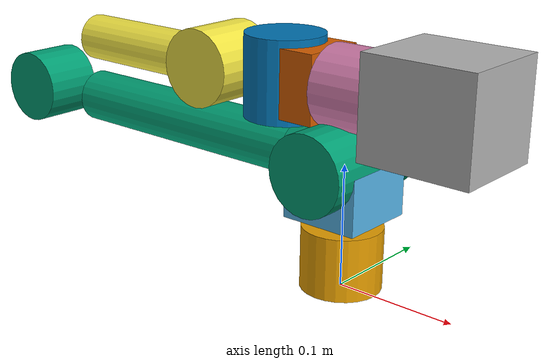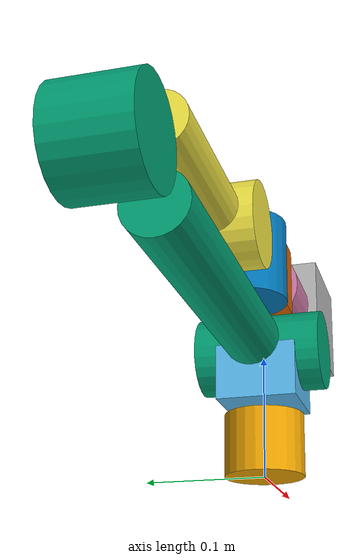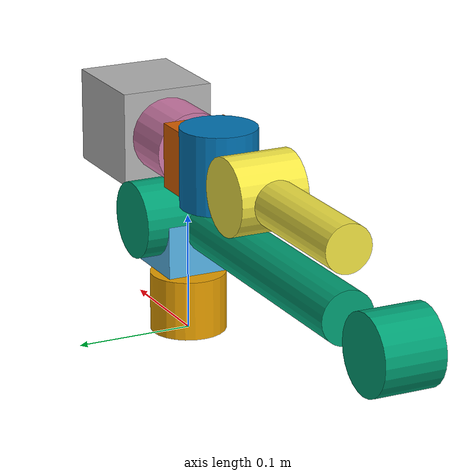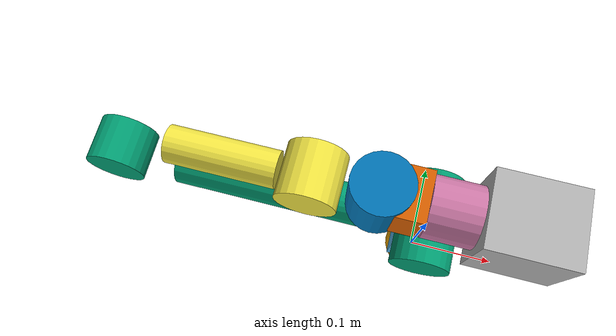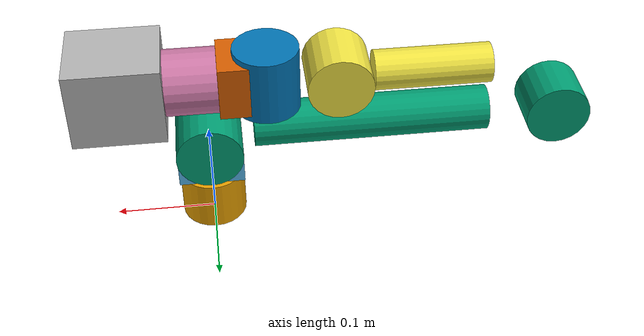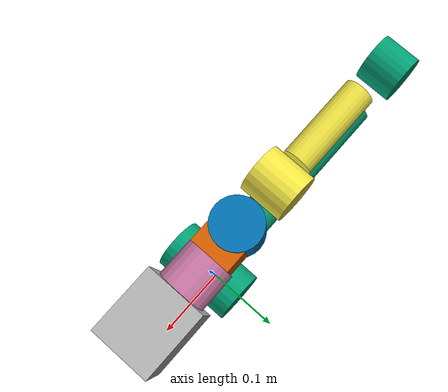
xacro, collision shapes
<robot xmlns:xacro="http://www.ros.org/wiki/xacro" name="z1_description">
  <xacro:arg name="prefix" default=""/>
  <link name="$(arg prefix)link00">
    <visual>
      <origin rpy="0 0 0" xyz="0 0 0" />
      <geometry>
        <mesh filename="package://z1_description/meshes/visual/z1_Link00.dae" scale="1 1 1" />
      </geometry>
    </visual>
    <collision>
      <geometry>
        <cylinder length="0.051" radius="0.0325" />
      </geometry>
      <origin rpy="0 0 0" xyz="0 0 0.0255" />
    </collision>
    <inertial>
      <origin rpy="0 0 0" xyz="-0.00334984 -0.00013615 0.02495843" />
      <mass value="0.47247481" />
      <inertia ixx="0.00037937" ixy="3.5e-07" ixz="1.037e-05" iyy="0.00041521" iyz="9.9e-07" izz="0.00053066" />
    </inertial>
  </link>
  <joint name="$(arg prefix)joint1" type="revolute">
    <origin rpy="0 0 0" xyz="0 0 0.0585" />
    <parent link="$(arg prefix)link00" />
    <child link="$(arg prefix)link01" />
    <axis xyz="0 0 1" />
    <dynamics damping="1.0" friction="1.0" />
    <limit effort="30.0" lower="-2.6179938779914944" upper="2.6179938779914944" velocity="10" />
  </joint>
  <link name="$(arg prefix)link01">
    <visual>
      <origin rpy="0 0 0" xyz="0 0 0" />
      <geometry>
        <mesh filename="package://z1_description/meshes/visual/z1_Link01.dae" scale="1 1 1" />
      </geometry>
    </visual>
    <inertial>
      <origin rpy="0 0 0" xyz="2.47e-06 -0.00025198 0.02317169" />
      <mass value="0.67332551" />
      <inertia ixx="0.00128328" ixy="6e-08" ixz="4e-07" iyy="0.00071931" iyz="-5e-07" izz="0.00083936" />
    </inertial>
    <collision>
      <origin xyz="0 0 0.0225" rpy="0 0 0" />
      <geometry>
        <box size="0.065 0.065 0.045" />
      </geometry>
    </collision>
  </link>
  <joint name="$(arg prefix)joint2" type="revolute">
    <origin rpy="0 0 0" xyz="0 0 0.045" />
    <parent link="$(arg prefix)link01" />
    <child link="$(arg prefix)link02" />
    <axis xyz="0 1 0" />
    <dynamics damping="2.0" friction="2.0" />
    <limit effort="60.0" lower="0.0" upper="2.9670597283903604" velocity="10" />
  </joint>
  <link name="$(arg prefix)link02">
    <visual>
      <origin rpy="0 0 0" xyz="0 0 0" />
      <geometry>
        <mesh filename="package://z1_description/meshes/visual/z1_Link02.dae" scale="1 1 1" />
      </geometry>
    </visual>
    <collision>
      <geometry>
        <cylinder length="0.102" radius="0.0325" />
      </geometry>
      <origin rpy="1.5707963267948966 0 0" xyz="0 0 0" />
    </collision>
    <collision>
      <geometry>
        <cylinder length="0.235" radius="0.0225" />
      </geometry>
      <origin rpy="0 1.5707963267948966 0" xyz="-0.16249999999999998 0 0" />
    </collision>
    <collision>
      <geometry>
        <cylinder length="0.051" radius="0.0325" />
      </geometry>
      <origin rpy="1.5707963267948966 0 0" xyz="-0.35 0 0" />
    </collision>
    <inertial>
      <origin rpy="0 0 0" xyz="-0.11012601 0.00240029 0.00158266" />
      <mass value="1.19132258" />
      <inertia ixx="0.00102138" ixy="-0.00062358" ixz="-5.13e-06" iyy="0.02429457" iyz="2.1e-06" izz="0.02466114" />
    </inertial>
  </link>
  <joint name="$(arg prefix)joint3" type="revolute">
    <origin rpy="0 0 0" xyz="-0.35 0 0" />
    <parent link="$(arg prefix)link02" />
    <child link="$(arg prefix)link03" />
    <axis xyz="0 1 0" />
    <dynamics damping="1.0" friction="1.0" />
    <limit effort="30.0" lower="-2.8797932657906435" upper="0.0" velocity="10" />
  </joint>
  <link name="$(arg prefix)link03">
    <visual>
      <origin rpy="0 0 0" xyz="0 0 0" />
      <geometry>
        <mesh filename="package://z1_description/meshes/visual/z1_Link03.dae" scale="1 1 1" />
      </geometry>
    </visual>
    <collision>
      <geometry>
        <cylinder length="0.116" radius="0.02" />
      </geometry>
      <origin rpy="0 1.5707963267948966 0" xyz="0.128 0 0.055" />
    </collision>
    <collision>
      <geometry>
        <cylinder length="0.059" radius="0.0325" />
      </geometry>
      <origin rpy="0 1.5707963267948966 1.5707963267948966" xyz="0.2205 0 0.055" />
    </collision>
    <inertial>
      <origin rpy="0 0 0" xyz="0.10609208 -0.00541815 0.03476383" />
      <mass value="0.83940874" />
      <inertia ixx="0.00108061" ixy="8.669e-05" ixz="0.00208102" iyy="0.00954238" iyz="1.332e-05" izz="0.00886621" />
    </inertial>
  </link>
  <joint name="$(arg prefix)joint4" type="revolute">
    <origin rpy="0 0 0" xyz="0.218 0 0.057" />
    <parent link="$(arg prefix)link03" />
    <child link="$(arg prefix)link04" />
    <axis xyz="0 1 0" />
    <dynamics damping="1.0" friction="1.0" />
    <limit effort="30.0" lower="-1.5184364492350666" upper="1.5184364492350666" velocity="10" />
  </joint>
  <link name="$(arg prefix)link04">
    <visual>
      <origin rpy="0 0 0" xyz="0 0 0" />
      <geometry>
        <mesh filename="package://z1_description/meshes/visual/z1_Link04.dae" scale="1 1 1" />
      </geometry>
    </visual>
    <collision>
      <geometry>
        <cylinder length="0.067" radius="0.0325" />
      </geometry>
      <origin rpy="0 0 0" xyz="0.072 0 0" />
    </collision>
    <inertial>
      <origin rpy="0 0 0" xyz="0.04366681 0.00364738 -0.00170192" />
      <mass value="0.56404563" />
      <inertia ixx="0.00031576" ixy="-8.13e-05" ixz="-4.091e-05" iyy="0.00092996" iyz="5.96e-06" izz="0.00097912" />
    </inertial>
  </link>
  <joint name="$(arg prefix)joint5" type="revolute">
    <origin rpy="0 0 0" xyz="0.07 0.0 0.0" />
    <parent link="$(arg prefix)link04" />
    <child link="$(arg prefix)link05" />
    <axis xyz="0 0 1" />
    <dynamics damping="1.0" friction="1.0" />
    <limit effort="30.0" lower="-1.3439035240356338" upper="1.3439035240356338" velocity="10" />
  </joint>
  <link name="$(arg prefix)link05">
    <visual>
      <origin rpy="0 0 0" xyz="0 0 0" />
      <geometry>
        <mesh filename="package://z1_description/meshes/visual/z1_Link05.dae" scale="1 1 1" />
      </geometry>
    </visual>
    <inertial>
      <origin rpy="0 0 0" xyz="0.03121533 0.0 0.00646316" />
      <mass value="0.38938492" />
      <inertia ixx="0.00017605" ixy="-4e-07" ixz="-5.689e-05" iyy="0.00055896" iyz="1.3e-07" izz="0.0005386" />
    </inertial>
    <collision>
      <origin xyz="0.0246 0 0" rpy="0 0 0" />
      <geometry>
        <box size="0.0492 0.055 0.055" />
      </geometry>
    </collision>
  </link>
  <joint name="$(arg prefix)joint6" type="revolute">
    <origin rpy="0 0 0" xyz="0.0492 0.0 0.0" />
    <parent link="$(arg prefix)link05" />
    <child link="$(arg prefix)link06" />
    <axis xyz="1 0 0" />
    <dynamics damping="1.0" friction="1.0" />
    <limit effort="30.0" lower="-2.792526803190927" upper="2.792526803190927" velocity="10" />
  </joint>
  <link name="$(arg prefix)link06">
    <visual>
      <origin rpy="0 0 0" xyz="0 0 0" />
      <geometry>
        <mesh filename="package://z1_description/meshes/visual/z1_Link06.dae" scale="1 1 1" />
      </geometry>
    </visual>
    <collision>
      <geometry>
        <cylinder length="0.051" radius="0.0325" />
      </geometry>
      <origin rpy="0 1.5707963267948966 0" xyz="0.0255 0 0" />
    </collision>
    <inertial>
      <origin rpy="0 0 0" xyz="0.0241569 -0.00017355 -0.00143876" />
      <mass value="0.28875807" />
      <inertia ixx="0.00018328" ixy="-1.22e-06" ixz="-5.4e-07" iyy="0.0001475" iyz="-8e-08" izz="0.0001468" />
    </inertial>
  </link>
  <link name="$(arg prefix)tool">
    <collision>
      <origin xyz="0.045 0 0" rpy="0 0 0" />
      <geometry>
        <box size="0.09 0.08 0.08" />
      </geometry>
    </collision>
    <inertial>
      <origin xyz="0.045 0 0" rpy="0 0 0" />
      <mass value="0.25" />
      <inertia ixx="0.00027" iyy="0.00030" izz="0.00030" ixy="0" ixz="0" iyz="0" />
    </inertial>
  </link>
  <joint name="$(arg prefix)tool_mount" type="fixed">
    <parent link="$(arg prefix)link06" />
    <child link="$(arg prefix)tool" />
    <origin xyz="0.051 0 0" rpy="0 0 0" />
  </joint>
</robot>
